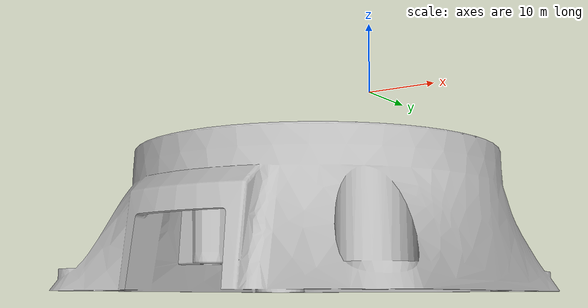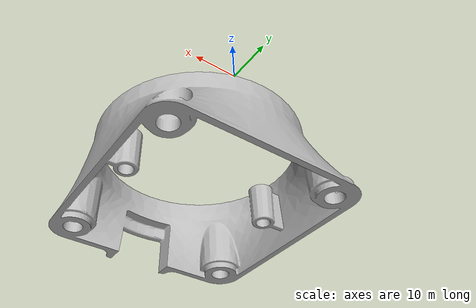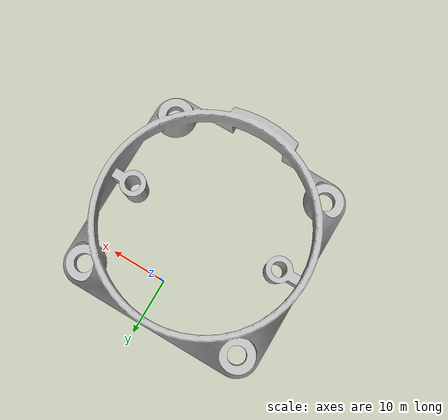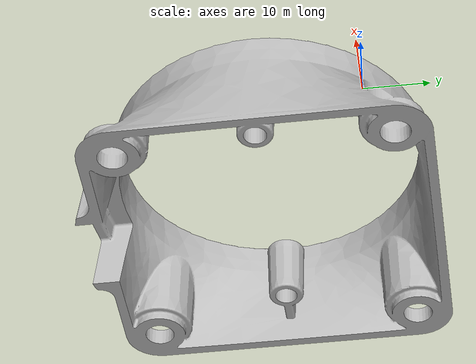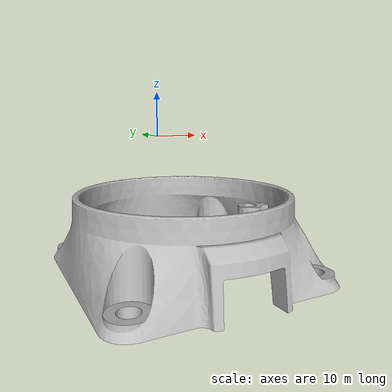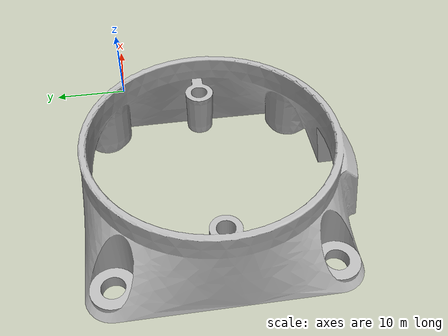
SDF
<?xml version='1.0'?>
<sdf version="1.4">
  <model name="sf45b">
    <pose>0 0 0.5 0 0 0</pose>
    <static>true</static>
    <link name="base_link">
      <inertial>
        <mass>1.0</mass>
        <inertia> <!-- inertias are tricky to compute -->
          <!-- http://gazebosim.org/tutorials?tut=inertia&cat=build_robot -->
          <ixx>0.083</ixx>       <!-- for a box: ixx = 0.083 * mass * (y*y + z*z) -->
          <ixy>0.0</ixy>         <!-- for a box: ixy = 0 -->
          <ixz>0.0</ixz>         <!-- for a box: ixz = 0 -->
          <iyy>0.083</iyy>       <!-- for a box: iyy = 0.083 * mass * (x*x + z*z) -->
          <iyz>0.0</iyz>         <!-- for a box: iyz = 0 -->
          <izz>0.083</izz>       <!-- for a box: izz = 0.083 * mass * (x*x + y*y) -->
        </inertia>
      </inertial>
      <collision name="collision">
        <geometry>
          <box>
            <size>1 1 1</size>
          </box>
        </geometry>
      </collision>
      <visual name="visual">
        <geometry>
        <mesh>
          <uri>./meshes/sf45b_lower.dae</uri>
        </mesh>
        </geometry>
      </visual>
    </link>
  </model>
</sdf>
